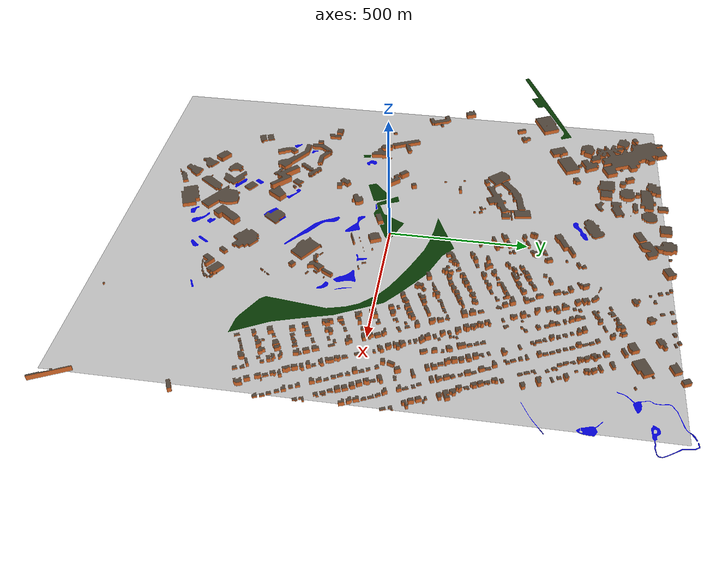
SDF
<?xml version="1.0" ?>
<sdf version="1.5">
  <model name="ERAU">
    <pose>0 0 0 0 0 0</pose>
    <static>true</static>
    <link name="city">
      <visual name="visual">
        <geometry>
          <mesh><uri>model://ERAU/ERAU.dae</uri></mesh>
        </geometry>
        <pose>0 0 -3.5 0 0 0</pose>
      </visual>
      <collision name="collision">
        <geometry>
          <mesh><uri>model://ERAU/ERAU.dae</uri></mesh>
        </geometry>
        <pose>0 0 -3.5 0 0 0</pose>
      </collision>
    </link>
  </model>
</sdf>
